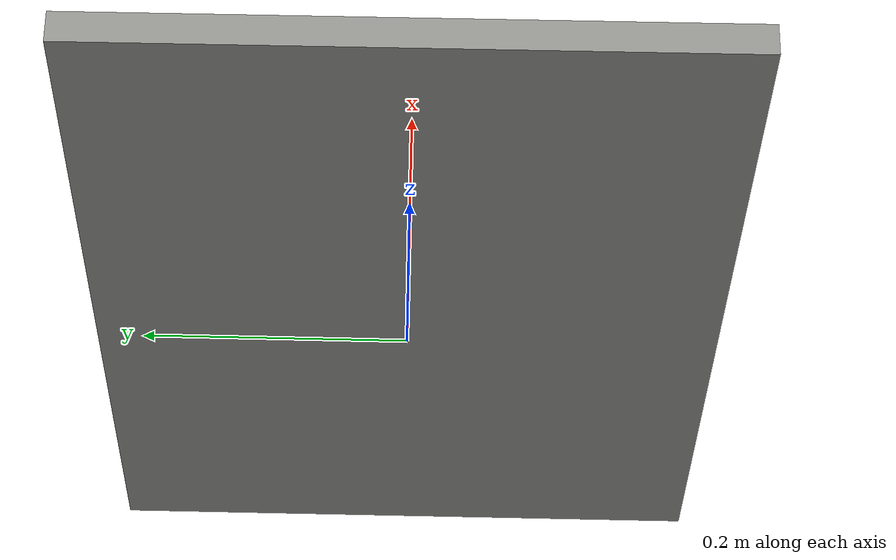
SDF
<?xml version="1.0"?>
<sdf version="1.9">
  <model name="shelf">
    <static>true</static>
    <link name="link">
      <!-- top slab: 0.25 (x, depth) x 0.40 (y, width), top surface at z=0.12 -->
      <collision name="slab_col">
        <pose>0 0 0.11 0 0 0</pose>
        <geometry><box><size>0.25 0.40 0.02</size></box></geometry>
        <surface>
          <friction><ode><mu>1.0</mu><mu2>1.0</mu2></ode></friction>
        </surface>
      </collision>
      <visual name="slab_vis">
        <pose>0 0 0.11 0 0 0</pose>
        <geometry><box><size>0.25 0.40 0.02</size></box></geometry>
        <material><ambient>0.72 0.72 0.70 1</ambient><diffuse>0.72 0.72 0.70 1</diffuse></material>
      </visual>

      <!-- legs -->
      <collision name="leg1_col"><pose>0.105 0.18 0.05 0 0 0</pose><geometry><box><size>0.03 0.03 0.10</size></box></geometry></collision>
      <visual name="leg1_vis"><pose>0.105 0.18 0.05 0 0 0</pose><geometry><box><size>0.03 0.03 0.10</size></box></geometry><material><ambient>0.45 0.45 0.44 1</ambient><diffuse>0.45 0.45 0.44 1</diffuse></material></visual>
      <collision name="leg2_col"><pose>0.105 -0.18 0.05 0 0 0</pose><geometry><box><size>0.03 0.03 0.10</size></box></geometry></collision>
      <visual name="leg2_vis"><pose>0.105 -0.18 0.05 0 0 0</pose><geometry><box><size>0.03 0.03 0.10</size></box></geometry><material><ambient>0.45 0.45 0.44 1</ambient><diffuse>0.45 0.45 0.44 1</diffuse></material></visual>
      <collision name="leg3_col"><pose>-0.105 0.18 0.05 0 0 0</pose><geometry><box><size>0.03 0.03 0.10</size></box></geometry></collision>
      <visual name="leg3_vis"><pose>-0.105 0.18 0.05 0 0 0</pose><geometry><box><size>0.03 0.03 0.10</size></box></geometry><material><ambient>0.45 0.45 0.44 1</ambient><diffuse>0.45 0.45 0.44 1</diffuse></material></visual>
      <collision name="leg4_col"><pose>-0.105 -0.18 0.05 0 0 0</pose><geometry><box><size>0.03 0.03 0.10</size></box></geometry></collision>
      <visual name="leg4_vis"><pose>-0.105 -0.18 0.05 0 0 0</pose><geometry><box><size>0.03 0.03 0.10</size></box></geometry><material><ambient>0.45 0.45 0.44 1</ambient><diffuse>0.45 0.45 0.44 1</diffuse></material></visual>

      <!-- tall back board (rear = -x side): LiDAR landmark -->
      <collision name="back_col">
        <pose>-0.135 0 0.30 0 0 0</pose>
        <geometry><box><size>0.02 0.40 0.60</size></box></geometry>
      </collision>
      <visual name="back_vis">
        <pose>-0.135 0 0.30 0 0 0</pose>
        <geometry><box><size>0.02 0.40 0.60</size></box></geometry>
        <material><ambient>0.58 0.58 0.56 1</ambient><diffuse>0.58 0.58 0.56 1</diffuse></material>
      </visual>
    </link>
  </model>
</sdf>
